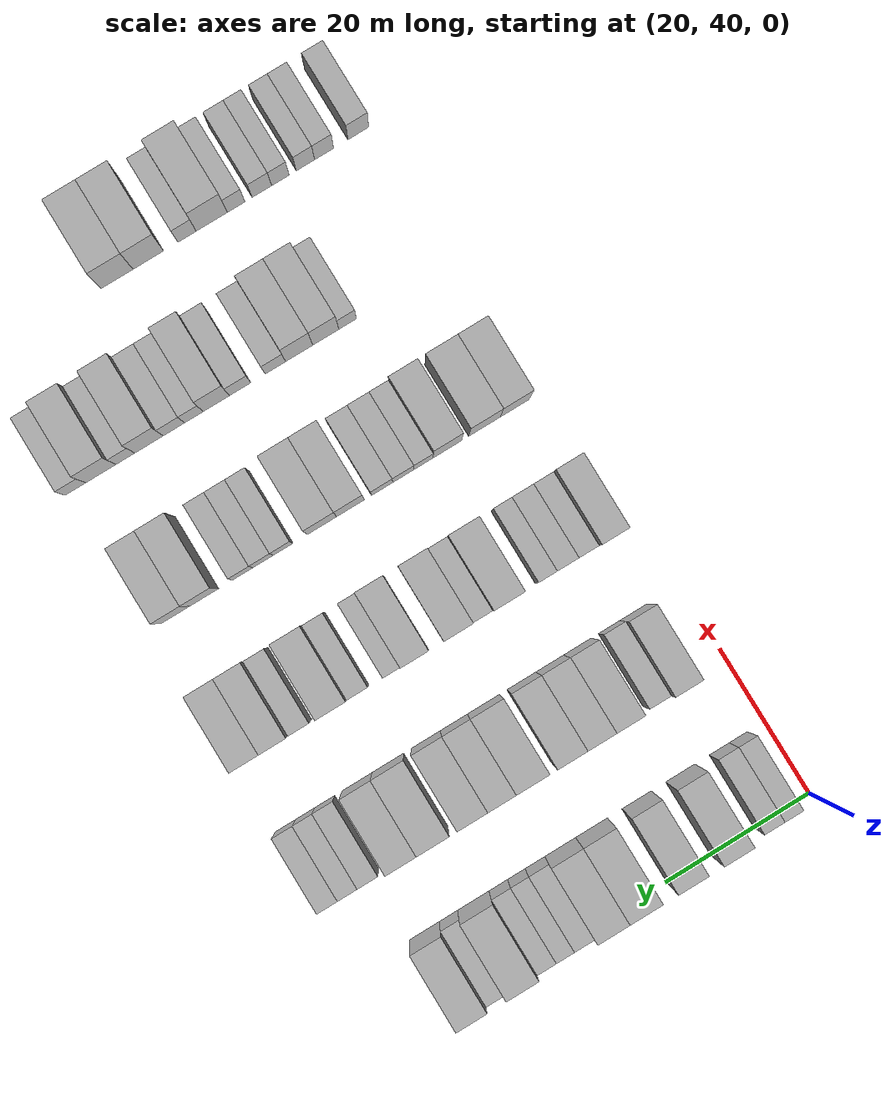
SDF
<sdf version="1.6">
 <world name="default">
  <model name="building_103">
   <static>1</static>
   <pose>25.0000 43.6694 0 0.000000 0.000000 0.000000</pose>
   <link name="link">
    <pose>0 0 3.00 0 0 0</pose>
    <collision name="collision"><geometry><box><size>10.0000 2.5260 6.0000</size></box></geometry></collision>
    <visual name="visual">
     <cast_shadows>0</cast_shadows>
     <geometry><box><size>10.0000 2.5260 6.0000</size></box></geometry>
     <material>
      <script>
       <uri>model://HANNAS_wall/materials/scripts</uri>
       <uri>model://HANNAS_wall/materials/textures</uri>
       <name>vrc/HANNAS_wall</name>
      </script>
     </material>
    </visual>
   </link>
  </model>
  <model name="building_104">
   <static>1</static>
   <pose>25.0000 46.3103 0 0.000000 0.000000 0.000000</pose>
   <link name="link">
    <pose>0 0 3.00 0 0 0</pose>
    <collision name="collision"><geometry><box><size>10.0000 2.7559 6.0000</size></box></geometry></collision>
    <visual name="visual">
     <cast_shadows>0</cast_shadows>
     <geometry><box><size>10.0000 2.7559 6.0000</size></box></geometry>
     <material>
      <script>
       <uri>model://HANNAS_wall/materials/scripts</uri>
       <uri>model://HANNAS_wall/materials/textures</uri>
       <name>vrc/HANNAS_wall</name>
      </script>
     </material>
    </visual>
   </link>
  </model>
  <model name="building_105">
   <static>1</static>
   <pose>25.0000 51.7215 0 0.000000 0.000000 0.000000</pose>
   <link name="link">
    <pose>0 0 4.50 0 0 0</pose>
    <collision name="collision"><geometry><box><size>10.0000 4.0665 9.0000</size></box></geometry></collision>
    <visual name="visual">
     <cast_shadows>0</cast_shadows>
     <geometry><box><size>10.0000 4.0665 9.0000</size></box></geometry>
     <material>
      <script>
       <uri>model://HANNAS_wall/materials/scripts</uri>
       <uri>model://HANNAS_wall/materials/textures</uri>
       <name>vrc/HANNAS_wall</name>
      </script>
     </material>
    </visual>
   </link>
  </model>
  <model name="building_106">
   <static>1</static>
   <pose>25.0000 57.7900 0 0.000000 0.000000 0.000000</pose>
   <link name="link">
    <pose>0 0 4.50 0 0 0</pose>
    <collision name="collision"><geometry><box><size>10.0000 4.0705 9.0000</size></box></geometry></collision>
    <visual name="visual">
     <cast_shadows>0</cast_shadows>
     <geometry><box><size>10.0000 4.0705 9.0000</size></box></geometry>
     <material>
      <script>
       <uri>model://HANNAS_wall/materials/scripts</uri>
       <uri>model://HANNAS_wall/materials/textures</uri>
       <name>vrc/HANNAS_wall</name>
      </script>
     </material>
    </visual>
   </link>
  </model>
  <model name="building_107">
   <static>1</static>
   <pose>25.0000 64.0242 0 0.000000 0.000000 0.000000</pose>
   <link name="link">
    <pose>0 0 4.50 0 0 0</pose>
    <collision name="collision"><geometry><box><size>10.0000 4.3979 9.0000</size></box></geometry></collision>
    <visual name="visual">
     <cast_shadows>0</cast_shadows>
     <geometry><box><size>10.0000 4.3979 9.0000</size></box></geometry>
     <material>
      <script>
       <uri>model://HANNAS_wall/materials/scripts</uri>
       <uri>model://HANNAS_wall/materials/textures</uri>
       <name>vrc/HANNAS_wall</name>
      </script>
     </material>
    </visual>
   </link>
  </model>
  <model name="building_108">
   <static>1</static>
   <pose>25.0000 68.3522 0 0.000000 0.000000 0.000000</pose>
   <link name="link">
    <pose>0 0 4.50 0 0 0</pose>
    <collision name="collision"><geometry><box><size>10.0000 4.2580 9.0000</size></box></geometry></collision>
    <visual name="visual">
     <cast_shadows>0</cast_shadows>
     <geometry><box><size>10.0000 4.2580 9.0000</size></box></geometry>
     <material>
      <script>
       <uri>model://HANNAS_wall/materials/scripts</uri>
       <uri>model://HANNAS_wall/materials/textures</uri>
       <name>vrc/HANNAS_wall</name>
      </script>
     </material>
    </visual>
   </link>
  </model>
  <model name="building_109">
   <static>1</static>
   <pose>25.0000 71.8502 0 0.000000 0.000000 0.000000</pose>
   <link name="link">
    <pose>0 0 3.00 0 0 0</pose>
    <collision name="collision"><geometry><box><size>10.0000 2.7379 6.0000</size></box></geometry></collision>
    <visual name="visual">
     <cast_shadows>0</cast_shadows>
     <geometry><box><size>10.0000 2.7379 6.0000</size></box></geometry>
     <material>
      <script>
       <uri>model://HANNAS_wall/materials/scripts</uri>
       <uri>model://HANNAS_wall/materials/textures</uri>
       <name>vrc/HANNAS_wall</name>
      </script>
     </material>
    </visual>
   </link>
  </model>
  <model name="building_110">
   <static>1</static>
   <pose>25.0000 74.4352 0 0.000000 0.000000 0.000000</pose>
   <link name="link">
    <pose>0 0 3.00 0 0 0</pose>
    <collision name="collision"><geometry><box><size>10.0000 2.4322 6.0000</size></box></geometry></collision>
    <visual name="visual">
     <cast_shadows>0</cast_shadows>
     <geometry><box><size>10.0000 2.4322 6.0000</size></box></geometry>
     <material>
      <script>
       <uri>model://HANNAS_wall/materials/scripts</uri>
       <uri>model://HANNAS_wall/materials/textures</uri>
       <name>vrc/HANNAS_wall</name>
      </script>
     </material>
    </visual>
   </link>
  </model>
  <model name="building_111">
   <static>1</static>
   <pose>25.0000 76.9370 0 0.000000 0.000000 0.000000</pose>
   <link name="link">
    <pose>0 0 3.00 0 0 0</pose>
    <collision name="collision"><geometry><box><size>10.0000 2.5714 6.0000</size></box></geometry></collision>
    <visual name="visual">
     <cast_shadows>0</cast_shadows>
     <geometry><box><size>10.0000 2.5714 6.0000</size></box></geometry>
     <material>
      <script>
       <uri>model://HANNAS_wall/materials/scripts</uri>
       <uri>model://HANNAS_wall/materials/textures</uri>
       <name>vrc/HANNAS_wall</name>
      </script>
     </material>
    </visual>
   </link>
  </model>
  <model name="building_112">
   <static>1</static>
   <pose>25.0000 80.3900 0 0.000000 0.000000 0.000000</pose>
   <link name="link">
    <pose>0 0 4.50 0 0 0</pose>
    <collision name="collision"><geometry><box><size>10.0000 4.3345 9.0000</size></box></geometry></collision>
    <visual name="visual">
     <cast_shadows>0</cast_shadows>
     <geometry><box><size>10.0000 4.3345 9.0000</size></box></geometry>
     <material>
      <script>
       <uri>model://HANNAS_wall/materials/scripts</uri>
       <uri>model://HANNAS_wall/materials/textures</uri>
       <name>vrc/HANNAS_wall</name>
      </script>
     </material>
    </visual>
   </link>
  </model>
  <model name="building_113">
   <static>1</static>
   <pose>25.0000 83.8057 0 0.000000 0.000000 0.000000</pose>
   <link name="link">
    <pose>0 0 3.00 0 0 0</pose>
    <collision name="collision"><geometry><box><size>10.0000 2.4968 6.0000</size></box></geometry></collision>
    <visual name="visual">
     <cast_shadows>0</cast_shadows>
     <geometry><box><size>10.0000 2.4968 6.0000</size></box></geometry>
     <material>
      <script>
       <uri>model://HANNAS_wall/materials/scripts</uri>
       <uri>model://HANNAS_wall/materials/textures</uri>
       <name>vrc/HANNAS_wall</name>
      </script>
     </material>
    </visual>
   </link>
  </model>
  <model name="building_114">
   <static>1</static>
   <pose>25.0000 87.1045 0 0.000000 0.000000 0.000000</pose>
   <link name="link">
    <pose>0 0 4.50 0 0 0</pose>
    <collision name="collision"><geometry><box><size>10.0000 4.1009 9.0000</size></box></geometry></collision>
    <visual name="visual">
     <cast_shadows>0</cast_shadows>
     <geometry><box><size>10.0000 4.1009 9.0000</size></box></geometry>
     <material>
      <script>
       <uri>model://HANNAS_wall/materials/scripts</uri>
       <uri>model://HANNAS_wall/materials/textures</uri>
       <name>vrc/HANNAS_wall</name>
      </script>
     </material>
    </visual>
   </link>
  </model>
  <model name="building_268">
   <static>1</static>
   <pose>44.0000 46.5423 0 0.000000 0.000000 0.000000</pose>
   <link name="link">
    <pose>0 0 4.50 0 0 0</pose>
    <collision name="collision"><geometry><box><size>10.0000 3.7752 9.0000</size></box></geometry></collision>
    <visual name="visual">
     <cast_shadows>0</cast_shadows>
     <geometry><box><size>10.0000 3.7752 9.0000</size></box></geometry>
     <material>
      <script>
       <uri>model://HANNAS_wall/materials/scripts</uri>
       <uri>model://HANNAS_wall/materials/textures</uri>
       <name>vrc/HANNAS_wall</name>
      </script>
     </material>
    </visual>
   </link>
  </model>
  <model name="building_269">
   <static>1</static>
   <pose>44.0000 49.8988 0 0.000000 0.000000 0.000000</pose>
   <link name="link">
    <pose>0 0 3.00 0 0 0</pose>
    <collision name="collision"><geometry><box><size>10.0000 2.9377 6.0000</size></box></geometry></collision>
    <visual name="visual">
     <cast_shadows>0</cast_shadows>
     <geometry><box><size>10.0000 2.9377 6.0000</size></box></geometry>
     <material>
      <script>
       <uri>model://HANNAS_wall/materials/scripts</uri>
       <uri>model://HANNAS_wall/materials/textures</uri>
       <name>vrc/HANNAS_wall</name>
      </script>
     </material>
    </visual>
   </link>
  </model>
  <model name="building_270">
   <static>1</static>
   <pose>44.0000 54.2858 0 0.000000 0.000000 0.000000</pose>
   <link name="link">
    <pose>0 0 4.50 0 0 0</pose>
    <collision name="collision"><geometry><box><size>10.0000 3.8363 9.0000</size></box></geometry></collision>
    <visual name="visual">
     <cast_shadows>0</cast_shadows>
     <geometry><box><size>10.0000 3.8363 9.0000</size></box></geometry>
     <material>
      <script>
       <uri>model://HANNAS_wall/materials/scripts</uri>
       <uri>model://HANNAS_wall/materials/textures</uri>
       <name>vrc/HANNAS_wall</name>
      </script>
     </material>
    </visual>
   </link>
  </model>
  <model name="building_271">
   <static>1</static>
   <pose>44.0000 58.1257 0 0.000000 0.000000 0.000000</pose>
   <link name="link">
    <pose>0 0 4.50 0 0 0</pose>
    <collision name="collision"><geometry><box><size>10.0000 3.8433 9.0000</size></box></geometry></collision>
    <visual name="visual">
     <cast_shadows>0</cast_shadows>
     <geometry><box><size>10.0000 3.8433 9.0000</size></box></geometry>
     <material>
      <script>
       <uri>model://HANNAS_wall/materials/scripts</uri>
       <uri>model://HANNAS_wall/materials/textures</uri>
       <name>vrc/HANNAS_wall</name>
      </script>
     </material>
    </visual>
   </link>
  </model>
  <model name="building_272">
   <static>1</static>
   <pose>44.0000 62.0607 0 0.000000 0.000000 0.000000</pose>
   <link name="link">
    <pose>0 0 4.50 0 0 0</pose>
    <collision name="collision"><geometry><box><size>10.0000 4.0267 9.0000</size></box></geometry></collision>
    <visual name="visual">
     <cast_shadows>0</cast_shadows>
     <geometry><box><size>10.0000 4.0267 9.0000</size></box></geometry>
     <material>
      <script>
       <uri>model://HANNAS_wall/materials/scripts</uri>
       <uri>model://HANNAS_wall/materials/textures</uri>
       <name>vrc/HANNAS_wall</name>
      </script>
     </material>
    </visual>
   </link>
  </model>
  <model name="building_273">
   <static>1</static>
   <pose>44.0000 67.3031 0 0.000000 0.000000 0.000000</pose>
   <link name="link">
    <pose>0 0 4.50 0 0 0</pose>
    <collision name="collision"><geometry><box><size>10.0000 4.4580 9.0000</size></box></geometry></collision>
    <visual name="visual">
     <cast_shadows>0</cast_shadows>
     <geometry><box><size>10.0000 4.4580 9.0000</size></box></geometry>
     <material>
      <script>
       <uri>model://HANNAS_wall/materials/scripts</uri>
       <uri>model://HANNAS_wall/materials/textures</uri>
       <name>vrc/HANNAS_wall</name>
      </script>
     </material>
    </visual>
   </link>
  </model>
  <model name="building_274">
   <static>1</static>
   <pose>44.0000 71.4208 0 0.000000 0.000000 0.000000</pose>
   <link name="link">
    <pose>0 0 4.50 0 0 0</pose>
    <collision name="collision"><geometry><box><size>10.0000 3.7775 9.0000</size></box></geometry></collision>
    <visual name="visual">
     <cast_shadows>0</cast_shadows>
     <geometry><box><size>10.0000 3.7775 9.0000</size></box></geometry>
     <material>
      <script>
       <uri>model://HANNAS_wall/materials/scripts</uri>
       <uri>model://HANNAS_wall/materials/textures</uri>
       <name>vrc/HANNAS_wall</name>
      </script>
     </material>
    </visual>
   </link>
  </model>
  <model name="building_275">
   <static>1</static>
   <pose>44.0000 75.3467 0 0.000000 0.000000 0.000000</pose>
   <link name="link">
    <pose>0 0 4.50 0 0 0</pose>
    <collision name="collision"><geometry><box><size>10.0000 4.0744 9.0000</size></box></geometry></collision>
    <visual name="visual">
     <cast_shadows>0</cast_shadows>
     <geometry><box><size>10.0000 4.0744 9.0000</size></box></geometry>
     <material>
      <script>
       <uri>model://HANNAS_wall/materials/scripts</uri>
       <uri>model://HANNAS_wall/materials/textures</uri>
       <name>vrc/HANNAS_wall</name>
      </script>
     </material>
    </visual>
   </link>
  </model>
  <model name="building_276">
   <static>1</static>
   <pose>44.0000 80.5728 0 0.000000 0.000000 0.000000</pose>
   <link name="link">
    <pose>0 0 4.50 0 0 0</pose>
    <collision name="collision"><geometry><box><size>10.0000 4.3776 9.0000</size></box></geometry></collision>
    <visual name="visual">
     <cast_shadows>0</cast_shadows>
     <geometry><box><size>10.0000 4.3776 9.0000</size></box></geometry>
     <material>
      <script>
       <uri>model://HANNAS_wall/materials/scripts</uri>
       <uri>model://HANNAS_wall/materials/textures</uri>
       <name>vrc/HANNAS_wall</name>
      </script>
     </material>
    </visual>
   </link>
  </model>
  <model name="building_277">
   <static>1</static>
   <pose>44.0000 84.8263 0 0.000000 0.000000 0.000000</pose>
   <link name="link">
    <pose>0 0 4.50 0 0 0</pose>
    <collision name="collision"><geometry><box><size>10.0000 4.1295 9.0000</size></box></geometry></collision>
    <visual name="visual">
     <cast_shadows>0</cast_shadows>
     <geometry><box><size>10.0000 4.1295 9.0000</size></box></geometry>
     <material>
      <script>
       <uri>model://HANNAS_wall/materials/scripts</uri>
       <uri>model://HANNAS_wall/materials/textures</uri>
       <name>vrc/HANNAS_wall</name>
      </script>
     </material>
    </visual>
   </link>
  </model>
  <model name="building_278">
   <static>1</static>
   <pose>44.0000 89.2739 0 0.000000 0.000000 0.000000</pose>
   <link name="link">
    <pose>0 0 3.00 0 0 0</pose>
    <collision name="collision"><geometry><box><size>10.0000 2.7658 6.0000</size></box></geometry></collision>
    <visual name="visual">
     <cast_shadows>0</cast_shadows>
     <geometry><box><size>10.0000 2.7658 6.0000</size></box></geometry>
     <material>
      <script>
       <uri>model://HANNAS_wall/materials/scripts</uri>
       <uri>model://HANNAS_wall/materials/textures</uri>
       <name>vrc/HANNAS_wall</name>
      </script>
     </material>
    </visual>
   </link>
  </model>
  <model name="building_279">
   <static>1</static>
   <pose>44.0000 91.9746 0 0.000000 0.000000 0.000000</pose>
   <link name="link">
    <pose>0 0 3.00 0 0 0</pose>
    <collision name="collision"><geometry><box><size>10.0000 2.6355 6.0000</size></box></geometry></collision>
    <visual name="visual">
     <cast_shadows>0</cast_shadows>
     <geometry><box><size>10.0000 2.6355 6.0000</size></box></geometry>
     <material>
      <script>
       <uri>model://HANNAS_wall/materials/scripts</uri>
       <uri>model://HANNAS_wall/materials/textures</uri>
       <name>vrc/HANNAS_wall</name>
      </script>
     </material>
    </visual>
   </link>
  </model>
  <model name="building_280">
   <static>1</static>
   <pose>44.0000 94.6833 0 0.000000 0.000000 0.000000</pose>
   <link name="link">
    <pose>0 0 3.00 0 0 0</pose>
    <collision name="collision"><geometry><box><size>10.0000 2.7819 6.0000</size></box></geometry></collision>
    <visual name="visual">
     <cast_shadows>0</cast_shadows>
     <geometry><box><size>10.0000 2.7819 6.0000</size></box></geometry>
     <material>
      <script>
       <uri>model://HANNAS_wall/materials/scripts</uri>
       <uri>model://HANNAS_wall/materials/textures</uri>
       <name>vrc/HANNAS_wall</name>
      </script>
     </material>
    </visual>
   </link>
  </model>
  <model name="building_438">
   <static>1</static>
   <pose>63.0000 44.5824 0 0.000000 0.000000 0.000000</pose>
   <link name="link">
    <pose>0 0 4.50 0 0 0</pose>
    <collision name="collision"><geometry><box><size>10.0000 3.7227 9.0000</size></box></geometry></collision>
    <visual name="visual">
     <cast_shadows>0</cast_shadows>
     <geometry><box><size>10.0000 3.7227 9.0000</size></box></geometry>
     <material>
      <script>
       <uri>model://HANNAS_wall/materials/scripts</uri>
       <uri>model://HANNAS_wall/materials/textures</uri>
       <name>vrc/HANNAS_wall</name>
      </script>
     </material>
    </visual>
   </link>
  </model>
  <model name="building_439">
   <static>1</static>
   <pose>63.0000 47.8013 0 0.000000 0.000000 0.000000</pose>
   <link name="link">
    <pose>0 0 3.00 0 0 0</pose>
    <collision name="collision"><geometry><box><size>10.0000 2.7150 6.0000</size></box></geometry></collision>
    <visual name="visual">
     <cast_shadows>0</cast_shadows>
     <geometry><box><size>10.0000 2.7150 6.0000</size></box></geometry>
     <material>
      <script>
       <uri>model://HANNAS_wall/materials/scripts</uri>
       <uri>model://HANNAS_wall/materials/textures</uri>
       <name>vrc/HANNAS_wall</name>
      </script>
     </material>
    </visual>
   </link>
  </model>
  <model name="building_440">
   <static>1</static>
   <pose>63.0000 50.6284 0 0.000000 0.000000 0.000000</pose>
   <link name="link">
    <pose>0 0 3.00 0 0 0</pose>
    <collision name="collision"><geometry><box><size>10.0000 2.9393 6.0000</size></box></geometry></collision>
    <visual name="visual">
     <cast_shadows>0</cast_shadows>
     <geometry><box><size>10.0000 2.9393 6.0000</size></box></geometry>
     <material>
      <script>
       <uri>model://HANNAS_wall/materials/scripts</uri>
       <uri>model://HANNAS_wall/materials/textures</uri>
       <name>vrc/HANNAS_wall</name>
      </script>
     </material>
    </visual>
   </link>
  </model>
  <model name="building_441">
   <static>1</static>
   <pose>63.0000 53.3629 0 0.000000 0.000000 0.000000</pose>
   <link name="link">
    <pose>0 0 3.00 0 0 0</pose>
    <collision name="collision"><geometry><box><size>10.0000 2.5297 6.0000</size></box></geometry></collision>
    <visual name="visual">
     <cast_shadows>0</cast_shadows>
     <geometry><box><size>10.0000 2.5297 6.0000</size></box></geometry>
     <material>
      <script>
       <uri>model://HANNAS_wall/materials/scripts</uri>
       <uri>model://HANNAS_wall/materials/textures</uri>
       <name>vrc/HANNAS_wall</name>
      </script>
     </material>
    </visual>
   </link>
  </model>
  <model name="building_442">
   <static>1</static>
   <pose>63.0000 58.7245 0 0.000000 0.000000 0.000000</pose>
   <link name="link">
    <pose>0 0 4.50 0 0 0</pose>
    <collision name="collision"><geometry><box><size>10.0000 4.1936 9.0000</size></box></geometry></collision>
    <visual name="visual">
     <cast_shadows>0</cast_shadows>
     <geometry><box><size>10.0000 4.1936 9.0000</size></box></geometry>
     <material>
      <script>
       <uri>model://HANNAS_wall/materials/scripts</uri>
       <uri>model://HANNAS_wall/materials/textures</uri>
       <name>vrc/HANNAS_wall</name>
      </script>
     </material>
    </visual>
   </link>
  </model>
  <model name="building_443">
   <static>1</static>
   <pose>63.0000 62.1846 0 0.000000 0.000000 0.000000</pose>
   <link name="link">
    <pose>0 0 3.00 0 0 0</pose>
    <collision name="collision"><geometry><box><size>10.0000 2.7265 6.0000</size></box></geometry></collision>
    <visual name="visual">
     <cast_shadows>0</cast_shadows>
     <geometry><box><size>10.0000 2.7265 6.0000</size></box></geometry>
     <material>
      <script>
       <uri>model://HANNAS_wall/materials/scripts</uri>
       <uri>model://HANNAS_wall/materials/textures</uri>
       <name>vrc/HANNAS_wall</name>
      </script>
     </material>
    </visual>
   </link>
  </model>
  <model name="building_444">
   <static>1</static>
   <pose>63.0000 65.5205 0 0.000000 0.000000 0.000000</pose>
   <link name="link">
    <pose>0 0 4.50 0 0 0</pose>
    <collision name="collision"><geometry><box><size>10.0000 3.9453 9.0000</size></box></geometry></collision>
    <visual name="visual">
     <cast_shadows>0</cast_shadows>
     <geometry><box><size>10.0000 3.9453 9.0000</size></box></geometry>
     <material>
      <script>
       <uri>model://HANNAS_wall/materials/scripts</uri>
       <uri>model://HANNAS_wall/materials/textures</uri>
       <name>vrc/HANNAS_wall</name>
      </script>
     </material>
    </visual>
   </link>
  </model>
  <model name="building_445">
   <static>1</static>
   <pose>63.0000 71.3900 0 0.000000 0.000000 0.000000</pose>
   <link name="link">
    <pose>0 0 4.50 0 0 0</pose>
    <collision name="collision"><geometry><box><size>10.0000 3.7938 9.0000</size></box></geometry></collision>
    <visual name="visual">
     <cast_shadows>0</cast_shadows>
     <geometry><box><size>10.0000 3.7938 9.0000</size></box></geometry>
     <material>
      <script>
       <uri>model://HANNAS_wall/materials/scripts</uri>
       <uri>model://HANNAS_wall/materials/textures</uri>
       <name>vrc/HANNAS_wall</name>
      </script>
     </material>
    </visual>
   </link>
  </model>
  <model name="building_446">
   <static>1</static>
   <pose>63.0000 74.4871 0 0.000000 0.000000 0.000000</pose>
   <link name="link">
    <pose>0 0 3.00 0 0 0</pose>
    <collision name="collision"><geometry><box><size>10.0000 2.4004 6.0000</size></box></geometry></collision>
    <visual name="visual">
     <cast_shadows>0</cast_shadows>
     <geometry><box><size>10.0000 2.4004 6.0000</size></box></geometry>
     <material>
      <script>
       <uri>model://HANNAS_wall/materials/scripts</uri>
       <uri>model://HANNAS_wall/materials/textures</uri>
       <name>vrc/HANNAS_wall</name>
      </script>
     </material>
    </visual>
   </link>
  </model>
  <model name="building_447">
   <static>1</static>
   <pose>63.0000 79.1033 0 0.000000 0.000000 0.000000</pose>
   <link name="link">
    <pose>0 0 3.00 0 0 0</pose>
    <collision name="collision"><geometry><box><size>10.0000 2.8320 6.0000</size></box></geometry></collision>
    <visual name="visual">
     <cast_shadows>0</cast_shadows>
     <geometry><box><size>10.0000 2.8320 6.0000</size></box></geometry>
     <material>
      <script>
       <uri>model://HANNAS_wall/materials/scripts</uri>
       <uri>model://HANNAS_wall/materials/textures</uri>
       <name>vrc/HANNAS_wall</name>
      </script>
     </material>
    </visual>
   </link>
  </model>
  <model name="building_448">
   <static>1</static>
   <pose>63.0000 82.5468 0 0.000000 0.000000 0.000000</pose>
   <link name="link">
    <pose>0 0 4.50 0 0 0</pose>
    <collision name="collision"><geometry><box><size>10.0000 4.0550 9.0000</size></box></geometry></collision>
    <visual name="visual">
     <cast_shadows>0</cast_shadows>
     <geometry><box><size>10.0000 4.0550 9.0000</size></box></geometry>
     <material>
      <script>
       <uri>model://HANNAS_wall/materials/scripts</uri>
       <uri>model://HANNAS_wall/materials/textures</uri>
       <name>vrc/HANNAS_wall</name>
      </script>
     </material>
    </visual>
   </link>
  </model>
  <model name="building_449">
   <static>1</static>
   <pose>63.0000 86.9843 0 0.000000 0.000000 0.000000</pose>
   <link name="link">
    <pose>0 0 3.00 0 0 0</pose>
    <collision name="collision"><geometry><box><size>10.0000 2.8200 6.0000</size></box></geometry></collision>
    <visual name="visual">
     <cast_shadows>0</cast_shadows>
     <geometry><box><size>10.0000 2.8200 6.0000</size></box></geometry>
     <material>
      <script>
       <uri>model://HANNAS_wall/materials/scripts</uri>
       <uri>model://HANNAS_wall/materials/textures</uri>
       <name>vrc/HANNAS_wall</name>
      </script>
     </material>
    </visual>
   </link>
  </model>
  <model name="building_450">
   <static>1</static>
   <pose>63.0000 90.2082 0 0.000000 0.000000 0.000000</pose>
   <link name="link">
    <pose>0 0 4.50 0 0 0</pose>
    <collision name="collision"><geometry><box><size>10.0000 3.6278 9.0000</size></box></geometry></collision>
    <visual name="visual">
     <cast_shadows>0</cast_shadows>
     <geometry><box><size>10.0000 3.6278 9.0000</size></box></geometry>
     <material>
      <script>
       <uri>model://HANNAS_wall/materials/scripts</uri>
       <uri>model://HANNAS_wall/materials/textures</uri>
       <name>vrc/HANNAS_wall</name>
      </script>
     </material>
    </visual>
   </link>
  </model>
  <model name="building_451">
   <static>1</static>
   <pose>63.0000 93.9665 0 0.000000 0.000000 0.000000</pose>
   <link name="link">
    <pose>0 0 4.50 0 0 0</pose>
    <collision name="collision"><geometry><box><size>10.0000 3.8889 9.0000</size></box></geometry></collision>
    <visual name="visual">
     <cast_shadows>0</cast_shadows>
     <geometry><box><size>10.0000 3.8889 9.0000</size></box></geometry>
     <material>
      <script>
       <uri>model://HANNAS_wall/materials/scripts</uri>
       <uri>model://HANNAS_wall/materials/textures</uri>
       <name>vrc/HANNAS_wall</name>
      </script>
     </material>
    </visual>
   </link>
  </model>
  <model name="building_621">
   <static>1</static>
   <pose>82.0000 45.8302 0 0.000000 0.000000 0.000000</pose>
   <link name="link">
    <pose>0 0 4.50 0 0 0</pose>
    <collision name="collision"><geometry><box><size>10.0000 4.0694 9.0000</size></box></geometry></collision>
    <visual name="visual">
     <cast_shadows>0</cast_shadows>
     <geometry><box><size>10.0000 4.0694 9.0000</size></box></geometry>
     <material>
      <script>
       <uri>model://HANNAS_wall/materials/scripts</uri>
       <uri>model://HANNAS_wall/materials/textures</uri>
       <name>vrc/HANNAS_wall</name>
      </script>
     </material>
    </visual>
   </link>
  </model>
  <model name="building_622">
   <static>1</static>
   <pose>82.0000 50.0459 0 0.000000 0.000000 0.000000</pose>
   <link name="link">
    <pose>0 0 4.50 0 0 0</pose>
    <collision name="collision"><geometry><box><size>10.0000 4.3621 9.0000</size></box></geometry></collision>
    <visual name="visual">
     <cast_shadows>0</cast_shadows>
     <geometry><box><size>10.0000 4.3621 9.0000</size></box></geometry>
     <material>
      <script>
       <uri>model://HANNAS_wall/materials/scripts</uri>
       <uri>model://HANNAS_wall/materials/textures</uri>
       <name>vrc/HANNAS_wall</name>
      </script>
     </material>
    </visual>
   </link>
  </model>
  <model name="building_623">
   <static>1</static>
   <pose>82.0000 55.2170 0 0.000000 0.000000 0.000000</pose>
   <link name="link">
    <pose>0 0 4.50 0 0 0</pose>
    <collision name="collision"><geometry><box><size>10.0000 3.9800 9.0000</size></box></geometry></collision>
    <visual name="visual">
     <cast_shadows>0</cast_shadows>
     <geometry><box><size>10.0000 3.9800 9.0000</size></box></geometry>
     <material>
      <script>
       <uri>model://HANNAS_wall/materials/scripts</uri>
       <uri>model://HANNAS_wall/materials/textures</uri>
       <name>vrc/HANNAS_wall</name>
      </script>
     </material>
    </visual>
   </link>
  </model>
  <model name="building_624">
   <static>1</static>
   <pose>82.0000 58.5284 0 0.000000 0.000000 0.000000</pose>
   <link name="link">
    <pose>0 0 3.00 0 0 0</pose>
    <collision name="collision"><geometry><box><size>10.0000 2.6428 6.0000</size></box></geometry></collision>
    <visual name="visual">
     <cast_shadows>0</cast_shadows>
     <geometry><box><size>10.0000 2.6428 6.0000</size></box></geometry>
     <material>
      <script>
       <uri>model://HANNAS_wall/materials/scripts</uri>
       <uri>model://HANNAS_wall/materials/textures</uri>
       <name>vrc/HANNAS_wall</name>
      </script>
     </material>
    </visual>
   </link>
  </model>
  <model name="building_625">
   <static>1</static>
   <pose>82.0000 61.3302 0 0.000000 0.000000 0.000000</pose>
   <link name="link">
    <pose>0 0 3.00 0 0 0</pose>
    <collision name="collision"><geometry><box><size>10.0000 2.9608 6.0000</size></box></geometry></collision>
    <visual name="visual">
     <cast_shadows>0</cast_shadows>
     <geometry><box><size>10.0000 2.9608 6.0000</size></box></geometry>
     <material>
      <script>
       <uri>model://HANNAS_wall/materials/scripts</uri>
       <uri>model://HANNAS_wall/materials/textures</uri>
       <name>vrc/HANNAS_wall</name>
      </script>
     </material>
    </visual>
   </link>
  </model>
  <model name="building_626">
   <static>1</static>
   <pose>82.0000 64.2879 0 0.000000 0.000000 0.000000</pose>
   <link name="link">
    <pose>0 0 3.00 0 0 0</pose>
    <collision name="collision"><geometry><box><size>10.0000 2.9546 6.0000</size></box></geometry></collision>
    <visual name="visual">
     <cast_shadows>0</cast_shadows>
     <geometry><box><size>10.0000 2.9546 6.0000</size></box></geometry>
     <material>
      <script>
       <uri>model://HANNAS_wall/materials/scripts</uri>
       <uri>model://HANNAS_wall/materials/textures</uri>
       <name>vrc/HANNAS_wall</name>
      </script>
     </material>
    </visual>
   </link>
  </model>
  <model name="building_627">
   <static>1</static>
   <pose>82.0000 68.6713 0 0.000000 0.000000 0.000000</pose>
   <link name="link">
    <pose>0 0 4.50 0 0 0</pose>
    <collision name="collision"><geometry><box><size>10.0000 3.8123 9.0000</size></box></geometry></collision>
    <visual name="visual">
     <cast_shadows>0</cast_shadows>
     <geometry><box><size>10.0000 3.8123 9.0000</size></box></geometry>
     <material>
      <script>
       <uri>model://HANNAS_wall/materials/scripts</uri>
       <uri>model://HANNAS_wall/materials/textures</uri>
       <name>vrc/HANNAS_wall</name>
      </script>
     </material>
    </visual>
   </link>
  </model>
  <model name="building_628">
   <static>1</static>
   <pose>82.0000 72.6149 0 0.000000 0.000000 0.000000</pose>
   <link name="link">
    <pose>0 0 4.50 0 0 0</pose>
    <collision name="collision"><geometry><box><size>10.0000 4.0747 9.0000</size></box></geometry></collision>
    <visual name="visual">
     <cast_shadows>0</cast_shadows>
     <geometry><box><size>10.0000 4.0747 9.0000</size></box></geometry>
     <material>
      <script>
       <uri>model://HANNAS_wall/materials/scripts</uri>
       <uri>model://HANNAS_wall/materials/textures</uri>
       <name>vrc/HANNAS_wall</name>
      </script>
     </material>
    </visual>
   </link>
  </model>
  <model name="building_629">
   <static>1</static>
   <pose>82.0000 78.0070 0 0.000000 0.000000 0.000000</pose>
   <link name="link">
    <pose>0 0 3.00 0 0 0</pose>
    <collision name="collision"><geometry><box><size>10.0000 2.7095 6.0000</size></box></geometry></collision>
    <visual name="visual">
     <cast_shadows>0</cast_shadows>
     <geometry><box><size>10.0000 2.7095 6.0000</size></box></geometry>
     <material>
      <script>
       <uri>model://HANNAS_wall/materials/scripts</uri>
       <uri>model://HANNAS_wall/materials/textures</uri>
       <name>vrc/HANNAS_wall</name>
      </script>
     </material>
    </visual>
   </link>
  </model>
  <model name="building_630">
   <static>1</static>
   <pose>82.0000 80.7595 0 0.000000 0.000000 0.000000</pose>
   <link name="link">
    <pose>0 0 3.00 0 0 0</pose>
    <collision name="collision"><geometry><box><size>10.0000 2.7954 6.0000</size></box></geometry></collision>
    <visual name="visual">
     <cast_shadows>0</cast_shadows>
     <geometry><box><size>10.0000 2.7954 6.0000</size></box></geometry>
     <material>
      <script>
       <uri>model://HANNAS_wall/materials/scripts</uri>
       <uri>model://HANNAS_wall/materials/textures</uri>
       <name>vrc/HANNAS_wall</name>
      </script>
     </material>
    </visual>
   </link>
  </model>
  <model name="building_631">
   <static>1</static>
   <pose>82.0000 83.5654 0 0.000000 0.000000 0.000000</pose>
   <link name="link">
    <pose>0 0 3.00 0 0 0</pose>
    <collision name="collision"><geometry><box><size>10.0000 2.8164 6.0000</size></box></geometry></collision>
    <visual name="visual">
     <cast_shadows>0</cast_shadows>
     <geometry><box><size>10.0000 2.8164 6.0000</size></box></geometry>
     <material>
      <script>
       <uri>model://HANNAS_wall/materials/scripts</uri>
       <uri>model://HANNAS_wall/materials/textures</uri>
       <name>vrc/HANNAS_wall</name>
      </script>
     </material>
    </visual>
   </link>
  </model>
  <model name="building_632">
   <static>1</static>
   <pose>82.0000 88.9679 0 0.000000 0.000000 0.000000</pose>
   <link name="link">
    <pose>0 0 4.50 0 0 0</pose>
    <collision name="collision"><geometry><box><size>10.0000 3.9886 9.0000</size></box></geometry></collision>
    <visual name="visual">
     <cast_shadows>0</cast_shadows>
     <geometry><box><size>10.0000 3.9886 9.0000</size></box></geometry>
     <material>
      <script>
       <uri>model://HANNAS_wall/materials/scripts</uri>
       <uri>model://HANNAS_wall/materials/textures</uri>
       <name>vrc/HANNAS_wall</name>
      </script>
     </material>
    </visual>
   </link>
  </model>
  <model name="building_633">
   <static>1</static>
   <pose>82.0000 92.8983 0 0.000000 0.000000 0.000000</pose>
   <link name="link">
    <pose>0 0 4.50 0 0 0</pose>
    <collision name="collision"><geometry><box><size>10.0000 3.8722 9.0000</size></box></geometry></collision>
    <visual name="visual">
     <cast_shadows>0</cast_shadows>
     <geometry><box><size>10.0000 3.8722 9.0000</size></box></geometry>
     <material>
      <script>
       <uri>model://HANNAS_wall/materials/scripts</uri>
       <uri>model://HANNAS_wall/materials/textures</uri>
       <name>vrc/HANNAS_wall</name>
      </script>
     </material>
    </visual>
   </link>
  </model>
  <model name="building_790">
   <static>1</static>
   <pose>101.0000 57.5374 0 0.000000 0.000000 0.000000</pose>
   <link name="link">
    <pose>0 0 3.00 0 0 0</pose>
    <collision name="collision"><geometry><box><size>10.0000 2.4611 6.0000</size></box></geometry></collision>
    <visual name="visual">
     <cast_shadows>0</cast_shadows>
     <geometry><box><size>10.0000 2.4611 6.0000</size></box></geometry>
     <material>
      <script>
       <uri>model://HANNAS_wall/materials/scripts</uri>
       <uri>model://HANNAS_wall/materials/textures</uri>
       <name>vrc/HANNAS_wall</name>
      </script>
     </material>
    </visual>
   </link>
  </model>
  <model name="building_791">
   <static>1</static>
   <pose>101.0000 60.5811 0 0.000000 0.000000 0.000000</pose>
   <link name="link">
    <pose>0 0 4.50 0 0 0</pose>
    <collision name="collision"><geometry><box><size>10.0000 3.6263 9.0000</size></box></geometry></collision>
    <visual name="visual">
     <cast_shadows>0</cast_shadows>
     <geometry><box><size>10.0000 3.6263 9.0000</size></box></geometry>
     <material>
      <script>
       <uri>model://HANNAS_wall/materials/scripts</uri>
       <uri>model://HANNAS_wall/materials/textures</uri>
       <name>vrc/HANNAS_wall</name>
      </script>
     </material>
    </visual>
   </link>
  </model>
  <model name="building_792">
   <static>1</static>
   <pose>101.0000 64.2890 0 0.000000 0.000000 0.000000</pose>
   <link name="link">
    <pose>0 0 4.50 0 0 0</pose>
    <collision name="collision"><geometry><box><size>10.0000 3.7894 9.0000</size></box></geometry></collision>
    <visual name="visual">
     <cast_shadows>0</cast_shadows>
     <geometry><box><size>10.0000 3.7894 9.0000</size></box></geometry>
     <material>
      <script>
       <uri>model://HANNAS_wall/materials/scripts</uri>
       <uri>model://HANNAS_wall/materials/textures</uri>
       <name>vrc/HANNAS_wall</name>
      </script>
     </material>
    </visual>
   </link>
  </model>
  <model name="building_793">
   <static>1</static>
   <pose>101.0000 67.6049 0 0.000000 0.000000 0.000000</pose>
   <link name="link">
    <pose>0 0 3.00 0 0 0</pose>
    <collision name="collision"><geometry><box><size>10.0000 2.8425 6.0000</size></box></geometry></collision>
    <visual name="visual">
     <cast_shadows>0</cast_shadows>
     <geometry><box><size>10.0000 2.8425 6.0000</size></box></geometry>
     <material>
      <script>
       <uri>model://HANNAS_wall/materials/scripts</uri>
       <uri>model://HANNAS_wall/materials/textures</uri>
       <name>vrc/HANNAS_wall</name>
      </script>
     </material>
    </visual>
   </link>
  </model>
  <model name="building_794">
   <static>1</static>
   <pose>101.0000 72.5096 0 0.000000 0.000000 0.000000</pose>
   <link name="link">
    <pose>0 0 3.00 0 0 0</pose>
    <collision name="collision"><geometry><box><size>10.0000 2.9671 6.0000</size></box></geometry></collision>
    <visual name="visual">
     <cast_shadows>0</cast_shadows>
     <geometry><box><size>10.0000 2.9671 6.0000</size></box></geometry>
     <material>
      <script>
       <uri>model://HANNAS_wall/materials/scripts</uri>
       <uri>model://HANNAS_wall/materials/textures</uri>
       <name>vrc/HANNAS_wall</name>
      </script>
     </material>
    </visual>
   </link>
  </model>
  <model name="building_795">
   <static>1</static>
   <pose>101.0000 75.8299 0 0.000000 0.000000 0.000000</pose>
   <link name="link">
    <pose>0 0 4.50 0 0 0</pose>
    <collision name="collision"><geometry><box><size>10.0000 3.6735 9.0000</size></box></geometry></collision>
    <visual name="visual">
     <cast_shadows>0</cast_shadows>
     <geometry><box><size>10.0000 3.6735 9.0000</size></box></geometry>
     <material>
      <script>
       <uri>model://HANNAS_wall/materials/scripts</uri>
       <uri>model://HANNAS_wall/materials/textures</uri>
       <name>vrc/HANNAS_wall</name>
      </script>
     </material>
    </visual>
   </link>
  </model>
  <model name="building_796">
   <static>1</static>
   <pose>101.0000 78.9573 0 0.000000 0.000000 0.000000</pose>
   <link name="link">
    <pose>0 0 3.00 0 0 0</pose>
    <collision name="collision"><geometry><box><size>10.0000 2.5811 6.0000</size></box></geometry></collision>
    <visual name="visual">
     <cast_shadows>0</cast_shadows>
     <geometry><box><size>10.0000 2.5811 6.0000</size></box></geometry>
     <material>
      <script>
       <uri>model://HANNAS_wall/materials/scripts</uri>
       <uri>model://HANNAS_wall/materials/textures</uri>
       <name>vrc/HANNAS_wall</name>
      </script>
     </material>
    </visual>
   </link>
  </model>
  <model name="building_797">
   <static>1</static>
   <pose>101.0000 81.7272 0 0.000000 0.000000 0.000000</pose>
   <link name="link">
    <pose>0 0 3.00 0 0 0</pose>
    <collision name="collision"><geometry><box><size>10.0000 2.9588 6.0000</size></box></geometry></collision>
    <visual name="visual">
     <cast_shadows>0</cast_shadows>
     <geometry><box><size>10.0000 2.9588 6.0000</size></box></geometry>
     <material>
      <script>
       <uri>model://HANNAS_wall/materials/scripts</uri>
       <uri>model://HANNAS_wall/materials/textures</uri>
       <name>vrc/HANNAS_wall</name>
      </script>
     </material>
    </visual>
   </link>
  </model>
  <model name="building_798">
   <static>1</static>
   <pose>101.0000 85.1748 0 0.000000 0.000000 0.000000</pose>
   <link name="link">
    <pose>0 0 4.50 0 0 0</pose>
    <collision name="collision"><geometry><box><size>10.0000 3.9363 9.0000</size></box></geometry></collision>
    <visual name="visual">
     <cast_shadows>0</cast_shadows>
     <geometry><box><size>10.0000 3.9363 9.0000</size></box></geometry>
     <material>
      <script>
       <uri>model://HANNAS_wall/materials/scripts</uri>
       <uri>model://HANNAS_wall/materials/textures</uri>
       <name>vrc/HANNAS_wall</name>
      </script>
     </material>
    </visual>
   </link>
  </model>
  <model name="building_799">
   <static>1</static>
   <pose>101.0000 88.4562 0 0.000000 0.000000 0.000000</pose>
   <link name="link">
    <pose>0 0 3.00 0 0 0</pose>
    <collision name="collision"><geometry><box><size>10.0000 2.6266 6.0000</size></box></geometry></collision>
    <visual name="visual">
     <cast_shadows>0</cast_shadows>
     <geometry><box><size>10.0000 2.6266 6.0000</size></box></geometry>
     <material>
      <script>
       <uri>model://HANNAS_wall/materials/scripts</uri>
       <uri>model://HANNAS_wall/materials/textures</uri>
       <name>vrc/HANNAS_wall</name>
      </script>
     </material>
    </visual>
   </link>
  </model>
  <model name="building_800">
   <static>1</static>
   <pose>101.0000 91.8527 0 0.000000 0.000000 0.000000</pose>
   <link name="link">
    <pose>0 0 4.50 0 0 0</pose>
    <collision name="collision"><geometry><box><size>10.0000 4.1663 9.0000</size></box></geometry></collision>
    <visual name="visual">
     <cast_shadows>0</cast_shadows>
     <geometry><box><size>10.0000 4.1663 9.0000</size></box></geometry>
     <material>
      <script>
       <uri>model://HANNAS_wall/materials/scripts</uri>
       <uri>model://HANNAS_wall/materials/textures</uri>
       <name>vrc/HANNAS_wall</name>
      </script>
     </material>
    </visual>
   </link>
  </model>
  <model name="building_801">
   <static>1</static>
   <pose>101.0000 95.3715 0 0.000000 0.000000 0.000000</pose>
   <link name="link">
    <pose>0 0 3.00 0 0 0</pose>
    <collision name="collision"><geometry><box><size>10.0000 2.8712 6.0000</size></box></geometry></collision>
    <visual name="visual">
     <cast_shadows>0</cast_shadows>
     <geometry><box><size>10.0000 2.8712 6.0000</size></box></geometry>
     <material>
      <script>
       <uri>model://HANNAS_wall/materials/scripts</uri>
       <uri>model://HANNAS_wall/materials/textures</uri>
       <name>vrc/HANNAS_wall</name>
      </script>
     </material>
    </visual>
   </link>
  </model>
  <model name="building_960">
   <static>1</static>
   <pose>120.0000 44.4866 0 0.000000 0.000000 0.000000</pose>
   <link name="link">
    <pose>0 0 3.00 0 0 0</pose>
    <collision name="collision"><geometry><box><size>10.0000 2.9200 6.0000</size></box></geometry></collision>
    <visual name="visual">
     <cast_shadows>0</cast_shadows>
     <geometry><box><size>10.0000 2.9200 6.0000</size></box></geometry>
     <material>
      <script>
       <uri>model://HANNAS_wall/materials/scripts</uri>
       <uri>model://HANNAS_wall/materials/textures</uri>
       <name>vrc/HANNAS_wall</name>
      </script>
     </material>
    </visual>
   </link>
  </model>
  <model name="building_961">
   <static>1</static>
   <pose>120.0000 49.2795 0 0.000000 0.000000 0.000000</pose>
   <link name="link">
    <pose>0 0 3.00 0 0 0</pose>
    <collision name="collision"><geometry><box><size>10.0000 2.6657 6.0000</size></box></geometry></collision>
    <visual name="visual">
     <cast_shadows>0</cast_shadows>
     <geometry><box><size>10.0000 2.6657 6.0000</size></box></geometry>
     <material>
      <script>
       <uri>model://HANNAS_wall/materials/scripts</uri>
       <uri>model://HANNAS_wall/materials/textures</uri>
       <name>vrc/HANNAS_wall</name>
      </script>
     </material>
    </visual>
   </link>
  </model>
  <model name="building_962">
   <static>1</static>
   <pose>120.0000 51.8935 0 0.000000 0.000000 0.000000</pose>
   <link name="link">
    <pose>0 0 3.00 0 0 0</pose>
    <collision name="collision"><geometry><box><size>10.0000 2.5625 6.0000</size></box></geometry></collision>
    <visual name="visual">
     <cast_shadows>0</cast_shadows>
     <geometry><box><size>10.0000 2.5625 6.0000</size></box></geometry>
     <material>
      <script>
       <uri>model://HANNAS_wall/materials/scripts</uri>
       <uri>model://HANNAS_wall/materials/textures</uri>
       <name>vrc/HANNAS_wall</name>
      </script>
     </material>
    </visual>
   </link>
  </model>
  <model name="building_963">
   <static>1</static>
   <pose>120.0000 55.4000 0 0.000000 0.000000 0.000000</pose>
   <link name="link">
    <pose>0 0 3.00 0 0 0</pose>
    <collision name="collision"><geometry><box><size>10.0000 2.4505 6.0000</size></box></geometry></collision>
    <visual name="visual">
     <cast_shadows>0</cast_shadows>
     <geometry><box><size>10.0000 2.4505 6.0000</size></box></geometry>
     <material>
      <script>
       <uri>model://HANNAS_wall/materials/scripts</uri>
       <uri>model://HANNAS_wall/materials/textures</uri>
       <name>vrc/HANNAS_wall</name>
      </script>
     </material>
    </visual>
   </link>
  </model>
  <model name="building_964">
   <static>1</static>
   <pose>120.0000 57.9935 0 0.000000 0.000000 0.000000</pose>
   <link name="link">
    <pose>0 0 3.00 0 0 0</pose>
    <collision name="collision"><geometry><box><size>10.0000 2.7365 6.0000</size></box></geometry></collision>
    <visual name="visual">
     <cast_shadows>0</cast_shadows>
     <geometry><box><size>10.0000 2.7365 6.0000</size></box></geometry>
     <material>
      <script>
       <uri>model://HANNAS_wall/materials/scripts</uri>
       <uri>model://HANNAS_wall/materials/textures</uri>
       <name>vrc/HANNAS_wall</name>
      </script>
     </material>
    </visual>
   </link>
  </model>
  <model name="building_965">
   <static>1</static>
   <pose>120.0000 61.6027 0 0.000000 0.000000 0.000000</pose>
   <link name="link">
    <pose>0 0 3.00 0 0 0</pose>
    <collision name="collision"><geometry><box><size>10.0000 2.4819 6.0000</size></box></geometry></collision>
    <visual name="visual">
     <cast_shadows>0</cast_shadows>
     <geometry><box><size>10.0000 2.4819 6.0000</size></box></geometry>
     <material>
      <script>
       <uri>model://HANNAS_wall/materials/scripts</uri>
       <uri>model://HANNAS_wall/materials/textures</uri>
       <name>vrc/HANNAS_wall</name>
      </script>
     </material>
    </visual>
   </link>
  </model>
  <model name="building_966">
   <static>1</static>
   <pose>120.0000 65.0135 0 0.000000 0.000000 0.000000</pose>
   <link name="link">
    <pose>0 0 4.50 0 0 0</pose>
    <collision name="collision"><geometry><box><size>10.0000 4.3396 9.0000</size></box></geometry></collision>
    <visual name="visual">
     <cast_shadows>0</cast_shadows>
     <geometry><box><size>10.0000 4.3396 9.0000</size></box></geometry>
     <material>
      <script>
       <uri>model://HANNAS_wall/materials/scripts</uri>
       <uri>model://HANNAS_wall/materials/textures</uri>
       <name>vrc/HANNAS_wall</name>
      </script>
     </material>
    </visual>
   </link>
  </model>
  <model name="building_967">
   <static>1</static>
   <pose>120.0000 68.4621 0 0.000000 0.000000 0.000000</pose>
   <link name="link">
    <pose>0 0 3.00 0 0 0</pose>
    <collision name="collision"><geometry><box><size>10.0000 2.5575 6.0000</size></box></geometry></collision>
    <visual name="visual">
     <cast_shadows>0</cast_shadows>
     <geometry><box><size>10.0000 2.5575 6.0000</size></box></geometry>
     <material>
      <script>
       <uri>model://HANNAS_wall/materials/scripts</uri>
       <uri>model://HANNAS_wall/materials/textures</uri>
       <name>vrc/HANNAS_wall</name>
      </script>
     </material>
    </visual>
   </link>
  </model>
  <model name="building_968">
   <static>1</static>
   <pose>120.0000 73.8689 0 0.000000 0.000000 0.000000</pose>
   <link name="link">
    <pose>0 0 4.50 0 0 0</pose>
    <collision name="collision"><geometry><box><size>10.0000 4.2560 9.0000</size></box></geometry></collision>
    <visual name="visual">
     <cast_shadows>0</cast_shadows>
     <geometry><box><size>10.0000 4.2560 9.0000</size></box></geometry>
     <material>
      <script>
       <uri>model://HANNAS_wall/materials/scripts</uri>
       <uri>model://HANNAS_wall/materials/textures</uri>
       <name>vrc/HANNAS_wall</name>
      </script>
     </material>
    </visual>
   </link>
  </model>
  <model name="building_969">
   <static>1</static>
   <pose>120.0000 78.2214 0 0.000000 0.000000 0.000000</pose>
   <link name="link">
    <pose>0 0 4.50 0 0 0</pose>
    <collision name="collision"><geometry><box><size>10.0000 4.4490 9.0000</size></box></geometry></collision>
    <visual name="visual">
     <cast_shadows>0</cast_shadows>
     <geometry><box><size>10.0000 4.4490 9.0000</size></box></geometry>
     <material>
      <script>
       <uri>model://HANNAS_wall/materials/scripts</uri>
       <uri>model://HANNAS_wall/materials/textures</uri>
       <name>vrc/HANNAS_wall</name>
      </script>
     </material>
    </visual>
   </link>
  </model>
 </world>
</sdf>
